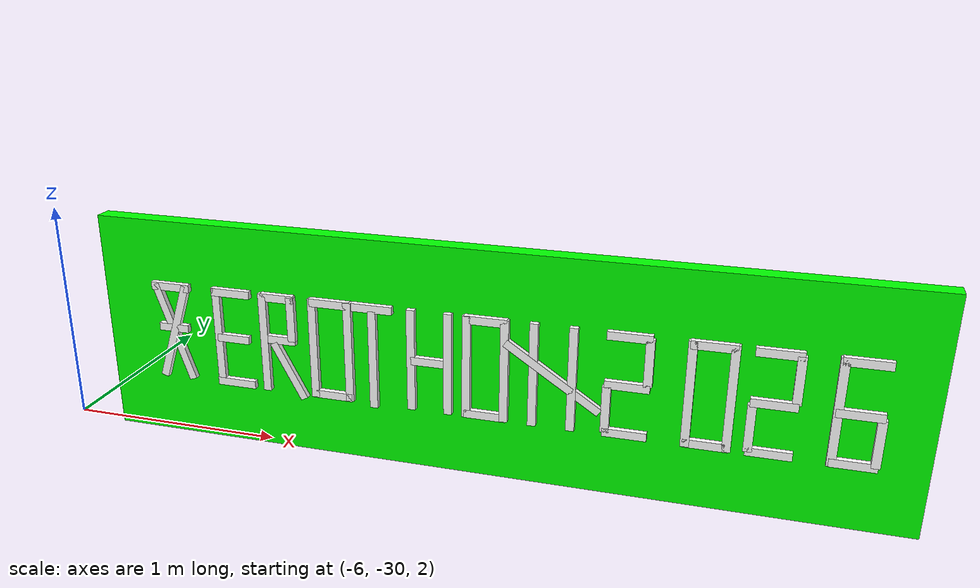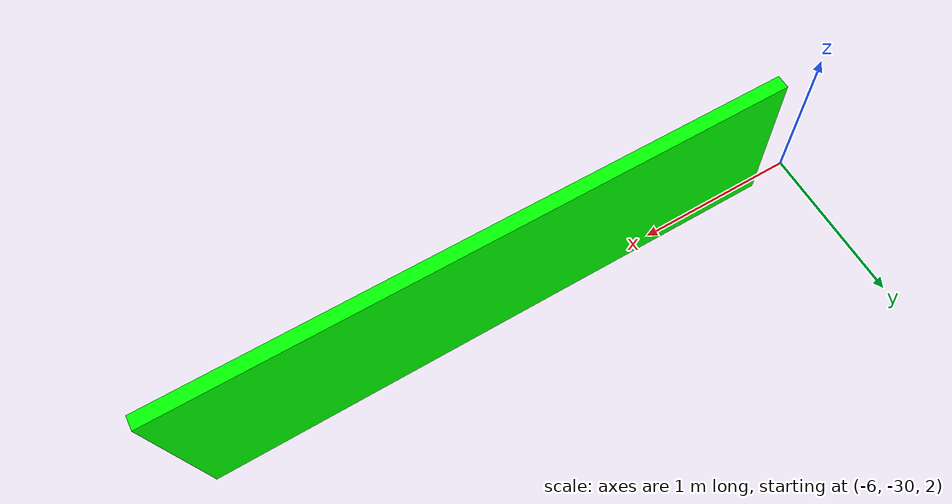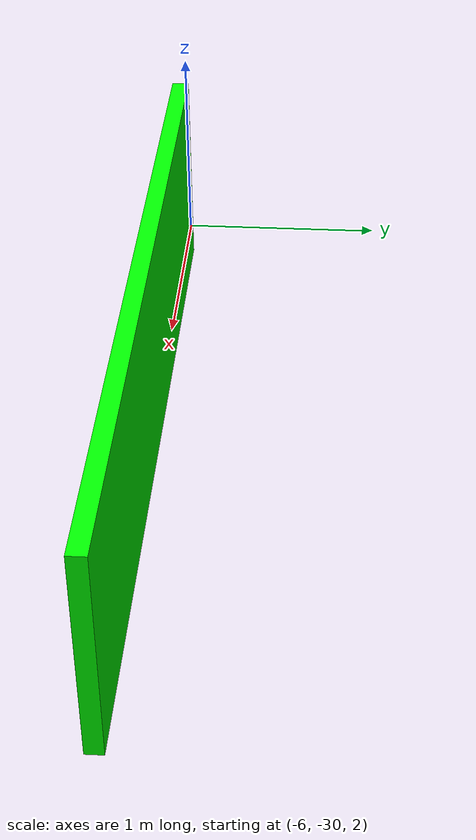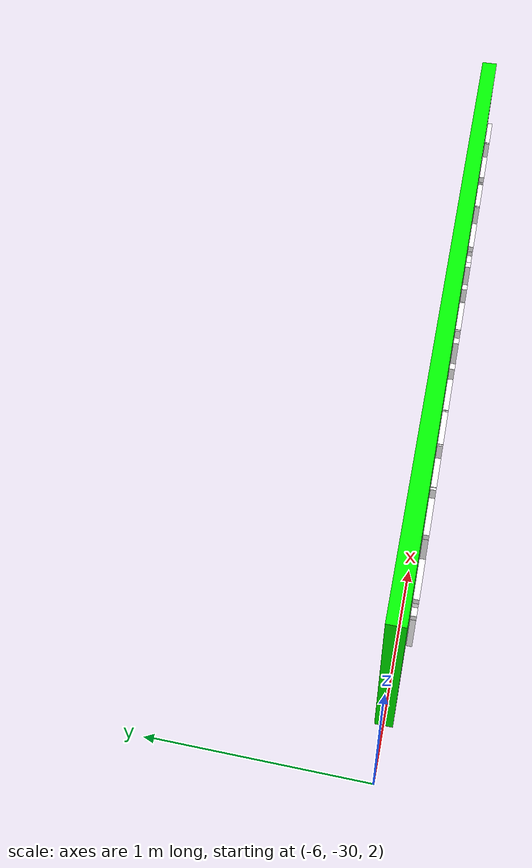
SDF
<sdf version="1.6">
 <world name="miss2_world">
  <physics name="1ms" type="ignored">
   <max_step_size>0.001</max_step_size>
   <real_time_factor>1.0</real_time_factor>
  </physics>
  <plugin filename="gz-sim-physics-system" name="gz::sim::systems::Physics"/>
  <plugin filename="gz-sim-user-commands-system" name="gz::sim::systems::UserCommands"/>
  <plugin filename="gz-sim-scene-broadcaster-system" name="gz::sim::systems::SceneBroadcaster"/>
  <plugin filename="gz-sim-imu-system" name="gz::sim::systems::Imu"/>
  <light type="directional" name="sun">
   <pose>0 0 15 0 0 0</pose>
   <diffuse>0.8 0.8 0.8 1</diffuse>
   <specular>0.2 0.2 0.2 1</specular>
   <direction>-0.5 0.1 -0.9</direction>
  </light>
  <plugin filename="gz-sim-sensors-system" name="gz::sim::systems::Sensors">
   <render_engine>ogre2</render_engine>
  </plugin>
  <model name="green_banner">
   <static>true</static>
   <pose>-4 -30 2.5 0 0 0</pose>
   <link name="banner_link">
    <visual name="banner_background">
     <geometry><box><size>3.5 0.08 1.0</size></box></geometry>
     <material><ambient>0 1 0 1</ambient><diffuse>0 1 0 1</diffuse><specular>0 0 0 1</specular></material>
    </visual>
    <visual name="A_left">
     <pose>-1.41 -0.055 0 0 -1.25 0</pose>
     <geometry><box><size>0.46 0.025 0.035</size></box></geometry>
     <material><ambient>1 1 1 1</ambient><diffuse>1 1 1 1</diffuse></material>
    </visual>
    <visual name="A_right">
     <pose>-1.41 -0.055 0 0 1.25 0</pose>
     <geometry><box><size>0.46 0.025 0.035</size></box></geometry>
     <material><ambient>1 1 1 1</ambient><diffuse>1 1 1 1</diffuse></material>
    </visual>
    <visual name="A_top">
     <pose>-1.41 -0.055 0.21 0 0 0</pose>
     <geometry><box><size>0.18 0.025 0.035</size></box></geometry>
     <material><ambient>1 1 1 1</ambient><diffuse>1 1 1 1</diffuse></material>
    </visual>
    <visual name="A_middle">
     <pose>-1.41 -0.055 0.02 0 0 0</pose>
     <geometry><box><size>0.14 0.025 0.035</size></box></geometry>
     <material><ambient>1 1 1 1</ambient><diffuse>1 1 1 1</diffuse></material>
    </visual>
    <visual name="E_left">
     <pose>-1.19 -0.055 0 0 0 0</pose>
     <geometry><box><size>0.035 0.025 0.45</size></box></geometry>
     <material><ambient>1 1 1 1</ambient><diffuse>1 1 1 1</diffuse></material>
    </visual>
    <visual name="E_top">
     <pose>-1.12 -0.055 0.21 0 0 0</pose>
     <geometry><box><size>0.18 0.025 0.035</size></box></geometry>
     <material><ambient>1 1 1 1</ambient><diffuse>1 1 1 1</diffuse></material>
    </visual>
    <visual name="E_mid">
     <pose>-1.12 -0.055 0 0 0 0</pose>
     <geometry><box><size>0.15 0.025 0.035</size></box></geometry>
     <material><ambient>1 1 1 1</ambient><diffuse>1 1 1 1</diffuse></material>
    </visual>
    <visual name="E_bottom">
     <pose>-1.12 -0.055 -0.21 0 0 0</pose>
     <geometry><box><size>0.18 0.025 0.035</size></box></geometry>
     <material><ambient>1 1 1 1</ambient><diffuse>1 1 1 1</diffuse></material>
    </visual>
    <visual name="R_left">
     <pose>-0.97 -0.055 0 0 0 0</pose>
     <geometry><box><size>0.035 0.025 0.45</size></box></geometry>
     <material><ambient>1 1 1 1</ambient><diffuse>1 1 1 1</diffuse></material>
    </visual>
    <visual name="R_top">
     <pose>-0.90 -0.055 0.21 0 0 0</pose>
     <geometry><box><size>0.15 0.025 0.035</size></box></geometry>
     <material><ambient>1 1 1 1</ambient><diffuse>1 1 1 1</diffuse></material>
    </visual>
    <visual name="R_mid">
     <pose>-0.90 -0.055 0.02 0 0 0</pose>
     <geometry><box><size>0.15 0.025 0.035</size></box></geometry>
     <material><ambient>1 1 1 1</ambient><diffuse>1 1 1 1</diffuse></material>
    </visual>
    <visual name="R_upper_right">
     <pose>-0.84 -0.055 0.12 0 0 0</pose>
     <geometry><box><size>0.035 0.025 0.20</size></box></geometry>
     <material><ambient>1 1 1 1</ambient><diffuse>1 1 1 1</diffuse></material>
    </visual>
    <visual name="R_leg">
     <pose>-0.86 -0.055 -0.12 0 1.08 0</pose>
     <geometry><box><size>0.28 0.025 0.035</size></box></geometry>
     <material><ambient>1 1 1 1</ambient><diffuse>1 1 1 1</diffuse></material>
    </visual>
    <visual name="O_left">
     <pose>-0.74 -0.055 0 0 0 0</pose>
     <geometry><box><size>0.035 0.025 0.45</size></box></geometry>
     <material><ambient>1 1 1 1</ambient><diffuse>1 1 1 1</diffuse></material>
    </visual>
    <visual name="O_right">
     <pose>-0.58 -0.055 0 0 0 0</pose>
     <geometry><box><size>0.035 0.025 0.45</size></box></geometry>
     <material><ambient>1 1 1 1</ambient><diffuse>1 1 1 1</diffuse></material>
    </visual>
    <visual name="O_top">
     <pose>-0.66 -0.055 0.21 0 0 0</pose>
     <geometry><box><size>0.18 0.025 0.035</size></box></geometry>
     <material><ambient>1 1 1 1</ambient><diffuse>1 1 1 1</diffuse></material>
    </visual>
    <visual name="O_bottom">
     <pose>-0.66 -0.055 -0.21 0 0 0</pose>
     <geometry><box><size>0.18 0.025 0.035</size></box></geometry>
     <material><ambient>1 1 1 1</ambient><diffuse>1 1 1 1</diffuse></material>
    </visual>
    <visual name="T_top">
     <pose>-0.47 -0.055 0.21 0 0 0</pose>
     <geometry><box><size>0.18 0.025 0.035</size></box></geometry>
     <material><ambient>1 1 1 1</ambient><diffuse>1 1 1 1</diffuse></material>
    </visual>
    <visual name="T_middle">
     <pose>-0.47 -0.055 -0.02 0 0 0</pose>
     <geometry><box><size>0.035 0.025 0.44</size></box></geometry>
     <material><ambient>1 1 1 1</ambient><diffuse>1 1 1 1</diffuse></material>
    </visual>
    <visual name="H_left">
     <pose>-0.30 -0.055 0 0 0 0</pose>
     <geometry><box><size>0.035 0.025 0.45</size></box></geometry>
     <material><ambient>1 1 1 1</ambient><diffuse>1 1 1 1</diffuse></material>
    </visual>
    <visual name="H_right">
     <pose>-0.14 -0.055 0 0 0 0</pose>
     <geometry><box><size>0.035 0.025 0.45</size></box></geometry>
     <material><ambient>1 1 1 1</ambient><diffuse>1 1 1 1</diffuse></material>
    </visual>
    <visual name="H_mid">
     <pose>-0.22 -0.055 0 0 0 0</pose>
     <geometry><box><size>0.16 0.025 0.035</size></box></geometry>
     <material><ambient>1 1 1 1</ambient><diffuse>1 1 1 1</diffuse></material>
    </visual>
    <visual name="O2_left">
     <pose>-0.06 -0.055 0 0 0 0</pose>
     <geometry><box><size>0.035 0.025 0.45</size></box></geometry>
     <material><ambient>1 1 1 1</ambient><diffuse>1 1 1 1</diffuse></material>
    </visual>
    <visual name="O2_right">
     <pose>0.10 -0.055 0 0 0 0</pose>
     <geometry><box><size>0.035 0.025 0.45</size></box></geometry>
     <material><ambient>1 1 1 1</ambient><diffuse>1 1 1 1</diffuse></material>
    </visual>
    <visual name="O2_top">
     <pose>0.02 -0.055 0.21 0 0 0</pose>
     <geometry><box><size>0.18 0.025 0.035</size></box></geometry>
     <material><ambient>1 1 1 1</ambient><diffuse>1 1 1 1</diffuse></material>
    </visual>
    <visual name="O2_bottom">
     <pose>0.02 -0.055 -0.21 0 0 0</pose>
     <geometry><box><size>0.18 0.025 0.035</size></box></geometry>
     <material><ambient>1 1 1 1</ambient><diffuse>1 1 1 1</diffuse></material>
    </visual>
    <visual name="N_left">
     <pose>0.22 -0.055 0 0 0 0</pose>
     <geometry><box><size>0.035 0.025 0.45</size></box></geometry>
     <material><ambient>1 1 1 1</ambient><diffuse>1 1 1 1</diffuse></material>
    </visual>
    <visual name="N_right">
     <pose>0.38 -0.055 0 0 0 0</pose>
     <geometry><box><size>0.035 0.025 0.45</size></box></geometry>
     <material><ambient>1 1 1 1</ambient><diffuse>1 1 1 1</diffuse></material>
    </visual>
    <visual name="N_diagonal">
     <pose>0.30 -0.055 0 0 0.58 0</pose>
     <geometry><box><size>0.47 0.025 0.035</size></box></geometry>
     <material><ambient>1 1 1 1</ambient><diffuse>1 1 1 1</diffuse></material>
    </visual>
    <visual name="two_top">
     <pose>0.60 -0.055 0.21 0 0 0</pose>
     <geometry><box><size>0.18 0.025 0.035</size></box></geometry>
     <material><ambient>1 1 1 1</ambient><diffuse>1 1 1 1</diffuse></material>
    </visual>
    <visual name="two_upper_right">
     <pose>0.68 -0.055 0.11 0 0 0</pose>
     <geometry><box><size>0.035 0.025 0.20</size></box></geometry>
     <material><ambient>1 1 1 1</ambient><diffuse>1 1 1 1</diffuse></material>
    </visual>
    <visual name="two_mid">
     <pose>0.60 -0.055 0 0 0 0</pose>
     <geometry><box><size>0.18 0.025 0.035</size></box></geometry>
     <material><ambient>1 1 1 1</ambient><diffuse>1 1 1 1</diffuse></material>
    </visual>
    <visual name="two_lower_left">
     <pose>0.52 -0.055 -0.11 0 0 0</pose>
     <geometry><box><size>0.035 0.025 0.20</size></box></geometry>
     <material><ambient>1 1 1 1</ambient><diffuse>1 1 1 1</diffuse></material>
    </visual>
    <visual name="two_bottom">
     <pose>0.60 -0.055 -0.21 0 0 0</pose>
     <geometry><box><size>0.18 0.025 0.035</size></box></geometry>
     <material><ambient>1 1 1 1</ambient><diffuse>1 1 1 1</diffuse></material>
    </visual>
    <visual name="zero_left">
     <pose>0.84 -0.055 0 0 0 0</pose>
     <geometry><box><size>0.035 0.025 0.45</size></box></geometry>
     <material><ambient>1 1 1 1</ambient><diffuse>1 1 1 1</diffuse></material>
    </visual>
    <visual name="zero_right">
     <pose>1.00 -0.055 0 0 0 0</pose>
     <geometry><box><size>0.035 0.025 0.45</size></box></geometry>
     <material><ambient>1 1 1 1</ambient><diffuse>1 1 1 1</diffuse></material>
    </visual>
    <visual name="zero_top">
     <pose>0.92 -0.055 0.21 0 0 0</pose>
     <geometry><box><size>0.18 0.025 0.035</size></box></geometry>
     <material><ambient>1 1 1 1</ambient><diffuse>1 1 1 1</diffuse></material>
    </visual>
    <visual name="zero_bottom">
     <pose>0.92 -0.055 -0.21 0 0 0</pose>
     <geometry><box><size>0.18 0.025 0.035</size></box></geometry>
     <material><ambient>1 1 1 1</ambient><diffuse>1 1 1 1</diffuse></material>
    </visual>
    <visual name="two2_top">
     <pose>1.16 -0.055 0.21 0 0 0</pose>
     <geometry><box><size>0.18 0.025 0.035</size></box></geometry>
     <material><ambient>1 1 1 1</ambient><diffuse>1 1 1 1</diffuse></material>
    </visual>
    <visual name="two2_upper_right">
     <pose>1.24 -0.055 0.11 0 0 0</pose>
     <geometry><box><size>0.035 0.025 0.20</size></box></geometry>
     <material><ambient>1 1 1 1</ambient><diffuse>1 1 1 1</diffuse></material>
    </visual>
    <visual name="two2_mid">
     <pose>1.16 -0.055 0 0 0 0</pose>
     <geometry><box><size>0.18 0.025 0.035</size></box></geometry>
     <material><ambient>1 1 1 1</ambient><diffuse>1 1 1 1</diffuse></material>
    </visual>
    <visual name="two2_lower_left">
     <pose>1.08 -0.055 -0.11 0 0 0</pose>
     <geometry><box><size>0.035 0.025 0.20</size></box></geometry>
     <material><ambient>1 1 1 1</ambient><diffuse>1 1 1 1</diffuse></material>
    </visual>
    <visual name="two2_bottom">
     <pose>1.16 -0.055 -0.21 0 0 0</pose>
     <geometry><box><size>0.18 0.025 0.035</size></box></geometry>
     <material><ambient>1 1 1 1</ambient><diffuse>1 1 1 1</diffuse></material>
    </visual>
    <visual name="six_left">
     <pose>1.39 -0.055 0 0 0 0</pose>
     <geometry><box><size>0.035 0.025 0.45</size></box></geometry>
     <material><ambient>1 1 1 1</ambient><diffuse>1 1 1 1</diffuse></material>
    </visual>
    <visual name="six_top">
     <pose>1.47 -0.055 0.21 0 0 0</pose>
     <geometry><box><size>0.18 0.025 0.035</size></box></geometry>
     <material><ambient>1 1 1 1</ambient><diffuse>1 1 1 1</diffuse></material>
    </visual>
    <visual name="six_mid">
     <pose>1.47 -0.055 0 0 0 0</pose>
     <geometry><box><size>0.18 0.025 0.035</size></box></geometry>
     <material><ambient>1 1 1 1</ambient><diffuse>1 1 1 1</diffuse></material>
    </visual>
    <visual name="six_bottom">
     <pose>1.47 -0.055 -0.21 0 0 0</pose>
     <geometry><box><size>0.18 0.025 0.035</size></box></geometry>
     <material><ambient>1 1 1 1</ambient><diffuse>1 1 1 1</diffuse></material>
    </visual>
    <visual name="six_lower_right">
     <pose>1.55 -0.055 -0.11 0 0 0</pose>
     <geometry><box><size>0.035 0.025 0.20</size></box></geometry>
     <material><ambient>1 1 1 1</ambient><diffuse>1 1 1 1</diffuse></material>
    </visual>
   </link>
  </model>
 </world>
</sdf>
